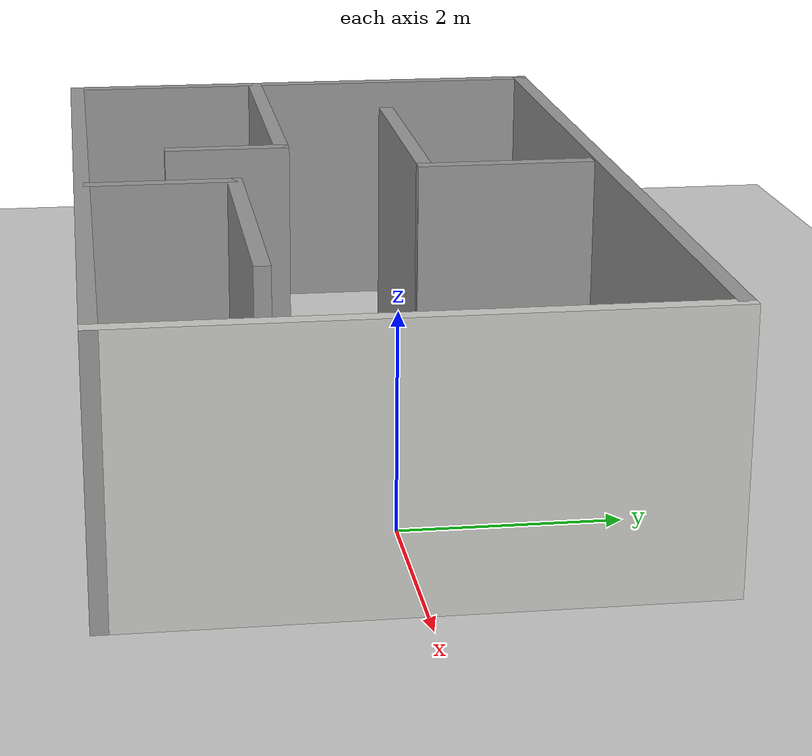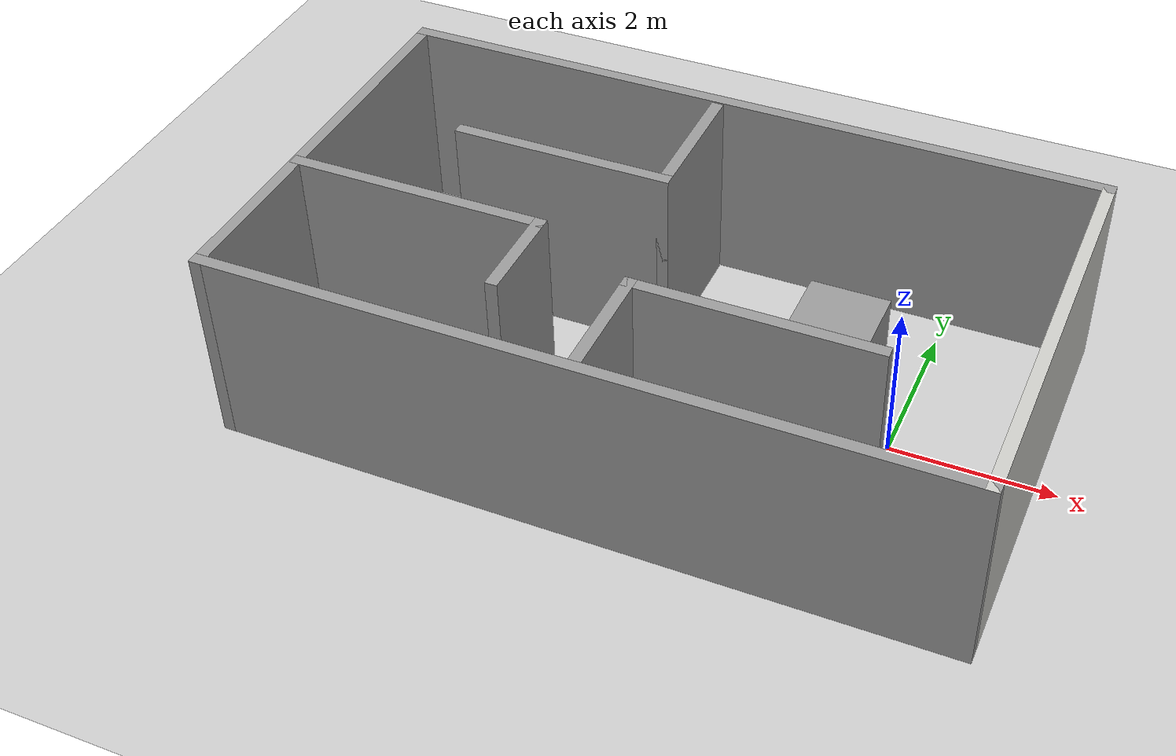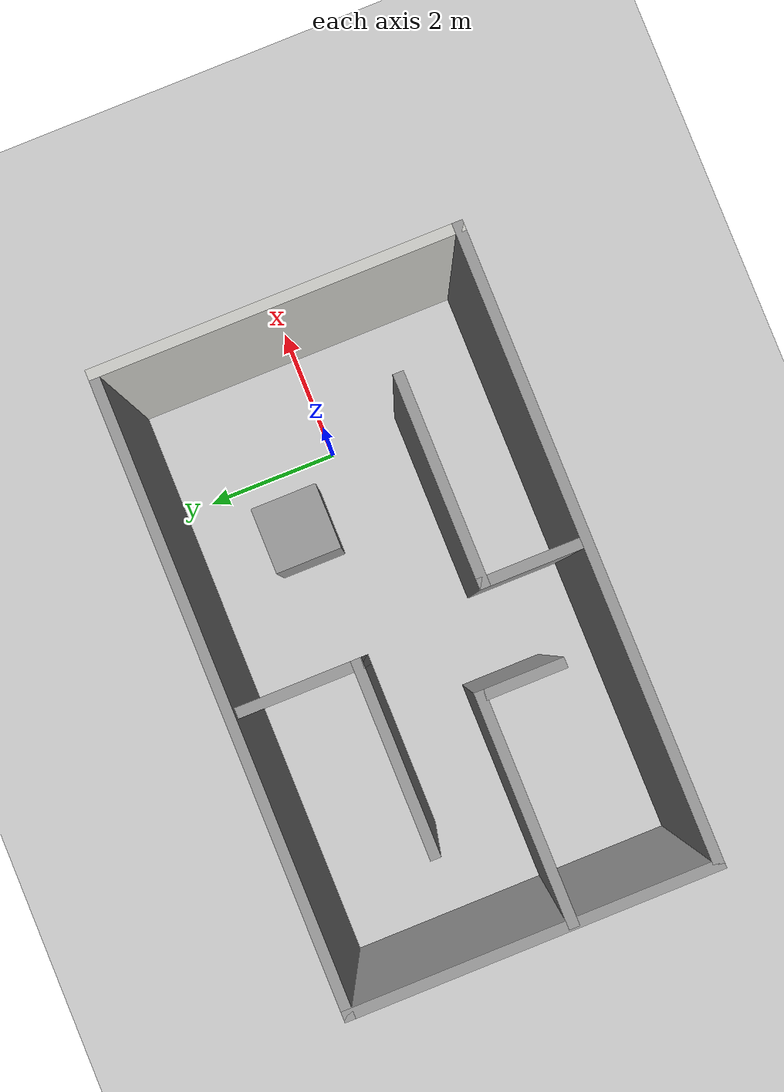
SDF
<sdf version="1.7">
 <world name="default">
  <light name="sun" type="directional">
   <pose>0 0 10 0 -0 0</pose>
   <diffuse>0.8 0.8 0.8 1</diffuse>
   <specular>0.2 0.2 0.2 1</specular>
   <attenuation>
    <range>1000</range>
    <constant>0.9</constant>
    <linear>0.01</linear>
    <quadratic>0.001</quadratic>
   </attenuation>
   <direction>-0.5 0.1 -0.9</direction>
   <spot><inner_angle>0</inner_angle><outer_angle>0</outer_angle><falloff>0</falloff></spot>
  </light>
  <model name="ground_plane">
   <static>1</static>
   <link name="link">
    <collision name="collision">
     <geometry><plane><normal>0 0 1</normal><size>100 100</size></plane></geometry>
     <surface>
      <contact><collide_bitmask>65535</collide_bitmask></contact>
      <friction><ode><mu>100</mu><mu2>50</mu2></ode></friction>
     </surface>
    </collision>
    <visual name="visual">
     <cast_shadows>0</cast_shadows>
     <geometry><plane><normal>0 0 1</normal><size>100 100</size></plane></geometry>
     <material>
      <script><uri>file://media/materials/scripts/gazebo.material</uri><name>Gazebo/Grey</name></script>
     </material>
    </visual>
   </link>
  </model>
  <gravity>0 0 -9.8</gravity>
  <magnetic_field>6e-06 2.3e-05 -4.2e-05</magnetic_field>
  <atmosphere type="adiabatic"/>
  <physics type="ode">
   <max_step_size>0.001</max_step_size>
   <real_time_factor>1</real_time_factor>
   <real_time_update_rate>1000</real_time_update_rate>
  </physics>
  <scene><ambient>0.4 0.4 0.4 1</ambient><background>0.7 0.7 0.7 1</background><shadows>1</shadows></scene>
  <audio><device>default</device></audio>
  <spherical_coordinates>
   <surface_model>EARTH_WGS84</surface_model>
   <latitude_deg>0</latitude_deg>
   <longitude_deg>0</longitude_deg>
   <elevation>0</elevation>
   <heading_deg>0</heading_deg>
  </spherical_coordinates>
  <model name="room">
   <pose>-2.68352 -0.347554 0 0 -0 0</pose>
   <link name="Wall_1">
    <collision name="Wall_1_Collision">
     <geometry><box><size>9 0.15 2.5</size></box></geometry>
     <pose>0 0 1.25 0 -0 0</pose>
    </collision>
    <visual name="Wall_1_Visual">
     <pose>0 0 1.25 0 -0 0</pose>
     <geometry><box><size>9 0.15 2.5</size></box></geometry>
     <material>
      <script><uri>file://media/materials/scripts/gazebo.material</uri><name>Gazebo/Grey</name></script>
      <ambient>1 1 1 1</ambient>
     </material>
     <meta><layer>0</layer></meta>
    </visual>
    <pose>-0.089163 2.84876 0 0 -0 0</pose>
   </link>
   <link name="Wall_10">
    <collision name="Wall_10_Collision">
     <geometry><box><size>1.25 0.15 2.5</size></box></geometry>
     <pose>0 0 1.25 0 -0 0</pose>
    </collision>
    <visual name="Wall_10_Visual">
     <pose>0 0 1.25 0 -0 0</pose>
     <geometry><box><size>1.25 0.15 2.5</size></box></geometry>
     <material>
      <script><uri>file://media/materials/scripts/gazebo.material</uri><name>Gazebo/Grey</name></script>
      <ambient>1 1 1 1</ambient>
     </material>
     <meta><layer>0</layer></meta>
    </visual>
    <pose>-1.39068 -0.787409 0 0 -0 -1.5708</pose>
   </link>
   <link name="Wall_12">
    <collision name="Wall_12_Collision">
     <geometry><box><size>1.5 0.15 2.5</size></box></geometry>
     <pose>0 0 1.25 0 -0 0</pose>
    </collision>
    <visual name="Wall_12_Visual">
     <pose>0 0 1.25 0 -0 0</pose>
     <geometry><box><size>1.5 0.15 2.5</size></box></geometry>
     <material>
      <script><uri>file://media/materials/scripts/gazebo.material</uri><name>Gazebo/Grey</name></script>
      <ambient>1 1 1 1</ambient>
     </material>
     <meta><layer>0</layer></meta>
    </visual>
    <pose>-0.048209 -1.48632 0 0 -0 1.5708</pose>
   </link>
   <link name="Wall_13">
    <collision name="Wall_13_Collision">
     <geometry><box><size>3 0.15 2.5</size></box></geometry>
     <pose>0 0 1.25 0 -0 0</pose>
    </collision>
    <visual name="Wall_13_Visual">
     <pose>0 0 1.25 0 -0 0</pose>
     <geometry><box><size>3 0.15 2.5</size></box></geometry>
     <material>
      <script><uri>file://media/materials/scripts/gazebo.material</uri><name>Gazebo/Grey</name></script>
      <ambient>1 1 1 1</ambient>
     </material>
     <meta><layer>0</layer></meta>
    </visual>
    <pose>1.37679 -0.811316 0 0 -0 0</pose>
   </link>
   <link name="Wall_2">
    <collision name="Wall_2_Collision">
     <geometry><box><size>5.25 0.15 2.5</size></box></geometry>
     <pose>0 0 1.25 0 -0 0</pose>
    </collision>
    <visual name="Wall_2_Visual">
     <pose>0 0 1.25 0 -0 0</pose>
     <geometry><box><size>5.25 0.15 2.5</size></box></geometry>
     <material>
      <script><uri>file://media/materials/scripts/gazebo.material</uri><name>Gazebo/CeilingTiled</name></script>
      <ambient>1 1 1 1</ambient>
     </material>
     <meta><layer>0</layer></meta>
    </visual>
    <pose>4.33584 0.298759 0 0 -0 -1.5708</pose>
   </link>
   <link name="Wall_3">
    <collision name="Wall_3_Collision">
     <geometry><box><size>9 0.15 2.5</size></box></geometry>
     <pose>0 0 1.25 0 -0 0</pose>
    </collision>
    <visual name="Wall_3_Visual">
     <pose>0 0 1.25 0 -0 0</pose>
     <geometry><box><size>9 0.15 2.5</size></box></geometry>
     <material>
      <script><uri>file://media/materials/scripts/gazebo.material</uri><name>Gazebo/Grey</name></script>
      <ambient>1 1 1 1</ambient>
     </material>
     <meta><layer>0</layer></meta>
    </visual>
    <pose>-0.089163 -2.25124 0 0 -0 3.14159</pose>
   </link>
   <link name="Wall_4">
    <collision name="Wall_4_Collision">
     <geometry><box><size>5.25 0.15 2.5</size></box></geometry>
     <pose>0 0 1.25 0 -0 0</pose>
    </collision>
    <visual name="Wall_4_Visual">
     <pose>0 0 1.25 0 -0 0</pose>
     <geometry><box><size>5.25 0.15 2.5</size></box></geometry>
     <material>
      <script><uri>file://media/materials/scripts/gazebo.material</uri><name>Gazebo/Grey</name></script>
      <ambient>1 1 1 1</ambient>
     </material>
     <meta><layer>0</layer></meta>
    </visual>
    <pose>-4.51416 0.298759 0 0 -0 1.5708</pose>
   </link>
   <link name="Wall_6">
    <collision name="Wall_6_Collision">
     <geometry><box><size>2.75 0.15 2.5</size></box></geometry>
     <pose>0 0 1.25 0 -0 0</pose>
    </collision>
    <visual name="Wall_6_Visual">
     <pose>0 0 1.25 0 -0 0</pose>
     <geometry><box><size>2.75 0.15 2.5</size></box></geometry>
     <material>
      <script><uri>file://media/materials/scripts/gazebo.material</uri><name>Gazebo/Grey</name></script>
      <ambient>1 1 1 1</ambient>
     </material>
     <meta><layer>0</layer></meta>
    </visual>
    <pose>-1.72152 1.07435 0 0 -0 0</pose>
   </link>
   <link name="Wall_7">
    <collision name="Wall_7_Collision">
     <geometry><box><size>1.75 0.15 2.5</size></box></geometry>
     <pose>0 0 1.25 0 -0 0</pose>
    </collision>
    <visual name="Wall_7_Visual">
     <pose>0 0 1.25 0 -0 0</pose>
     <geometry><box><size>1.75 0.15 2.5</size></box></geometry>
     <material>
      <script><uri>file://media/materials/scripts/gazebo.material</uri><name>Gazebo/Grey</name></script>
      <ambient>1 1 1 1</ambient>
     </material>
     <meta><layer>0</layer></meta>
    </visual>
    <pose>-0.42152 1.87435 0 0 -0 1.5708</pose>
   </link>
   <link name="Wall_9">
    <collision name="Wall_9_Collision">
     <geometry><box><size>3.25 0.15 2.5</size></box></geometry>
     <pose>0 0 1.25 0 -0 0</pose>
    </collision>
    <visual name="Wall_9_Visual">
     <pose>0 0 1.25 0 -0 0</pose>
     <geometry><box><size>3.25 0.15 2.5</size></box></geometry>
     <material>
      <script><uri>file://media/materials/scripts/gazebo.material</uri><name>Gazebo/Grey</name></script>
      <ambient>1 1 1 1</ambient>
     </material>
     <meta><layer>0</layer></meta>
    </visual>
    <pose>-2.94069 -0.237409 0 0 -0 0</pose>
   </link>
   <static>1</static>
  </model>
  <model name="unit_box">
   <pose>-0.971402 0.896214 0.499995 -0 1e-05 1e-06</pose>
   <link name="link">
    <inertial>
     <mass>1</mass>
     <inertia>
      <ixx>0.166667</ixx>
      <ixy>0</ixy>
      <ixz>0</ixz>
      <iyy>0.166667</iyy>
      <iyz>0</iyz>
      <izz>0.166667</izz>
     </inertia>
    </inertial>
    <collision name="collision"><geometry><box><size>1 1 1</size></box></geometry></collision>
    <visual name="visual">
     <geometry><box><size>1 1 1</size></box></geometry>
     <material>
      <script><name>Gazebo/Grey</name><uri>file://media/materials/scripts/gazebo.material</uri></script>
     </material>
    </visual>
   </link>
  </model>
 </world>
</sdf>
